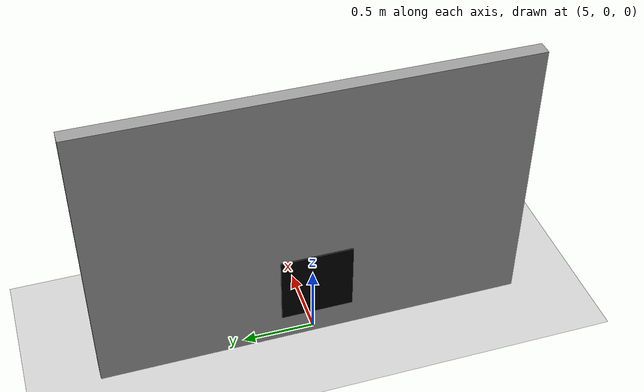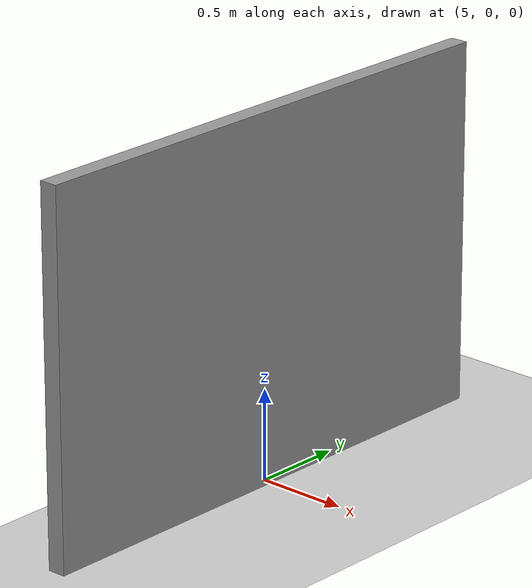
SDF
<?xml version="1.0" ?>
<sdf version="1.8">
  <world name="simple_warehouse">

    <!-- Physics -->
    <physics name="1ms" type="ode">
      <max_step_size>0.001</max_step_size>
      <real_time_factor>1.0</real_time_factor>
    </physics>

    <!-- Sun -->
    <light type="directional" name="sun">
      <cast_shadows>true</cast_shadows>
      <pose>0 0 10 0 0 0</pose>
      <diffuse>0.8 0.8 0.8 1</diffuse>
      <specular>0.2 0.2 0.2 1</specular>
      <direction>-0.5 0.1 -0.9</direction>
    </light>

    <!-- Ground Plane -->
    <model name="ground_plane">
      <static>true</static>
      <link name="link">
        <collision name="collision">
          <geometry>
            <plane>
              <normal>0 0 1</normal>
              <size>50 50</size>
            </plane>
          </geometry>
        </collision>
        <visual name="visual">
          <geometry>
            <plane>
              <normal>0 0 1</normal>
              <size>50 50</size>
            </plane>
          </geometry>
          <material>
            <ambient>0.8 0.8 0.8 1</ambient>
            <diffuse>0.8 0.8 0.8 1</diffuse>
          </material>
        </visual>
      </link>
    </model>

    <!-- Simple Wall at Docking Location -->
    <model name="docking_wall">
      <static>true</static>
      <pose>5 0 1 0 0 0</pose>
      <link name="link">
        <collision name="collision">
          <geometry>
            <box>
              <size>0.1 3 2</size>
            </box>
          </geometry>
        </collision>
        <visual name="visual">
          <geometry>
            <box>
              <size>0.1 3 2</size>
            </box>
          </geometry>
          <material>
            <ambient>0.6 0.6 0.6 1</ambient>
            <diffuse>0.6 0.6 0.6 1</diffuse>
          </material>
        </visual>
      </link>
    </model>

    <!-- ArUco Marker (simple black square visual) -->
    <model name="aruco_marker">
      <static>true</static>
      <pose>4.9 0 0.5 0 0 3.14159</pose>
      <link name="link">
        <visual name="visual">
          <geometry>
            <box>
              <size>0.01 0.5 0.5</size>
            </box>
          </geometry>
          <material>
            <ambient>0 0 0 1</ambient>
            <diffuse>0 0 0 1</diffuse>
          </material>
        </visual>
      </link>
    </model>

  </world>
</sdf>
